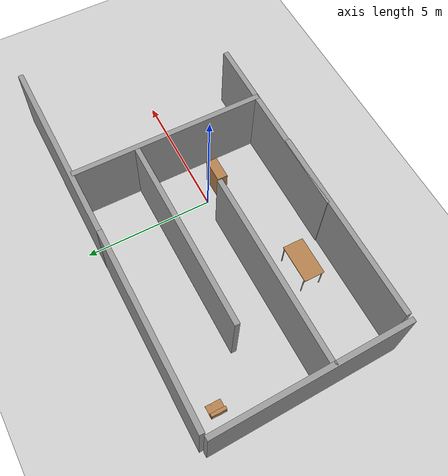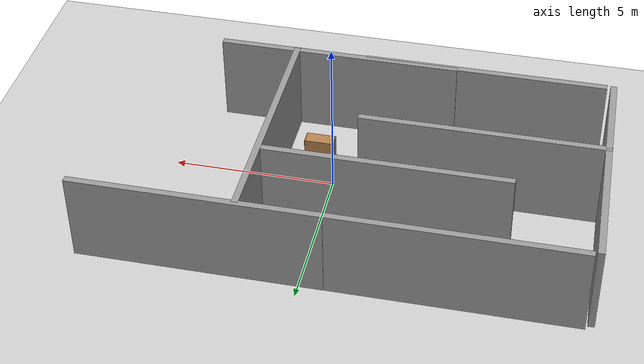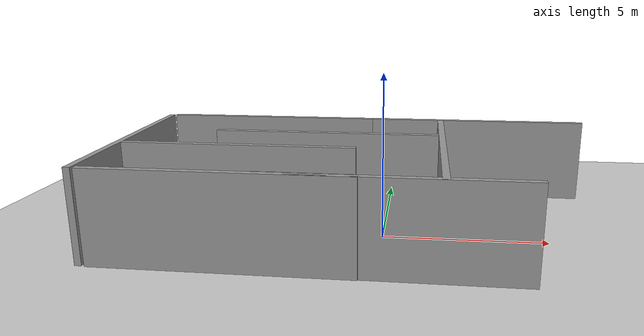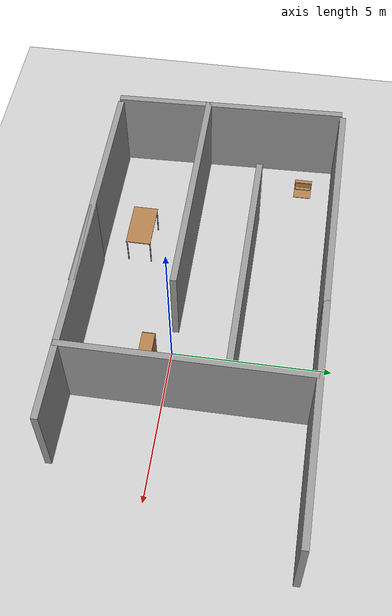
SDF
<sdf version="1.6">
 <world name="default">
  <light name="sun" type="directional">
   <pose>0 0 10 0 -0 0</pose>
   <diffuse>0.8 0.8 0.8 1</diffuse>
   <specular>0.2 0.2 0.2 1</specular>
   <attenuation>
    <range>1000</range>
    <constant>0.9</constant>
    <linear>0.01</linear>
    <quadratic>0.001</quadratic>
   </attenuation>
   <direction>-0.5 0.1 -0.9</direction>
  </light>
  <model name="ground_plane">
   <static>1</static>
   <link name="link">
    <collision name="collision">
     <geometry><plane><normal>0 0 1</normal><size>100 100</size></plane></geometry>
     <surface><friction><ode><mu>100</mu><mu2>50</mu2></ode></friction></surface>
    </collision>
    <visual name="visual">
     <cast_shadows>0</cast_shadows>
     <geometry><plane><normal>0 0 1</normal><size>100 100</size></plane></geometry>
     <material>
      <script><uri>file://media/materials/scripts/gazebo.material</uri><name>Gazebo/Grey</name></script>
     </material>
    </visual>
    <velocity_decay><linear>0</linear><angular>0</angular></velocity_decay>
   </link>
  </model>
  <physics name="default_physics" default="0" type="ode">
   <max_step_size>0.001</max_step_size>
   <real_time_factor>1</real_time_factor>
   <real_time_update_rate>1000</real_time_update_rate>
  </physics>
  <scene><ambient>0.4 0.4 0.4 1</ambient><background>0.7 0.7 0.7 1</background><shadows>1</shadows></scene>
  <spherical_coordinates>
   <surface_model>EARTH_WGS84</surface_model>
   <latitude_deg>0</latitude_deg>
   <longitude_deg>0</longitude_deg>
   <elevation>0</elevation>
   <heading_deg>0</heading_deg>
  </spherical_coordinates>
  <model name="grey_wall">
   <static>1</static>
   <link name="link">
    <pose>0 0 1.4 0 -0 0</pose>
    <collision name="collision"><geometry><box><size>7.5 0.2 2.8</size></box></geometry></collision>
    <visual name="visual">
     <cast_shadows>0</cast_shadows>
     <geometry><box><size>7.5 0.2 2.8</size></box></geometry>
     <material>
      <script>
       <uri>model://grey_wall/materials/scripts</uri>
       <uri>model://grey_wall/materials/textures</uri>
       <name>vrc/grey_wall</name>
      </script>
     </material>
    </visual>
    <velocity_decay><linear>0</linear><angular>0</angular></velocity_decay>
   </link>
   <pose>-4.45669 4.51369 0 0 -0 0</pose>
  </model>
  <model name="grey_wall_0">
   <static>1</static>
   <link name="link">
    <pose>0 0 1.4 0 -0 0</pose>
    <collision name="collision"><geometry><box><size>7.5 0.2 2.8</size></box></geometry></collision>
    <visual name="visual">
     <cast_shadows>0</cast_shadows>
     <geometry><box><size>7.5 0.2 2.8</size></box></geometry>
     <material>
      <script>
       <uri>model://grey_wall/materials/scripts</uri>
       <uri>model://grey_wall/materials/textures</uri>
       <name>vrc/grey_wall</name>
      </script>
     </material>
    </visual>
    <velocity_decay><linear>0</linear><angular>0</angular></velocity_decay>
   </link>
   <pose>-4.17438 -2.94975 0 0 -0 0</pose>
  </model>
  <model name="grey_wall_1">
   <static>1</static>
   <link name="link">
    <pose>0 0 1.4 0 -0 0</pose>
    <collision name="collision"><geometry><box><size>7.5 0.2 2.8</size></box></geometry></collision>
    <visual name="visual">
     <cast_shadows>0</cast_shadows>
     <geometry><box><size>7.5 0.2 2.8</size></box></geometry>
     <material>
      <script>
       <uri>model://grey_wall/materials/scripts</uri>
       <uri>model://grey_wall/materials/textures</uri>
       <name>vrc/grey_wall</name>
      </script>
     </material>
    </visual>
    <velocity_decay><linear>0</linear><angular>0</angular></velocity_decay>
   </link>
   <pose>-8.24091 0.730795 0 0 0 -1.53854</pose>
  </model>
  <model name="grey_wall_2">
   <static>1</static>
   <link name="link">
    <pose>0 0 1.4 0 -0 0</pose>
    <collision name="collision"><geometry><box><size>7.5 0.2 2.8</size></box></geometry></collision>
    <visual name="visual">
     <cast_shadows>0</cast_shadows>
     <geometry><box><size>7.5 0.2 2.8</size></box></geometry>
     <material>
      <script>
       <uri>model://grey_wall/materials/scripts</uri>
       <uri>model://grey_wall/materials/textures</uri>
       <name>vrc/grey_wall</name>
      </script>
     </material>
    </visual>
    <velocity_decay><linear>0</linear><angular>0</angular></velocity_decay>
   </link>
   <pose>-4.55904 0 0 0 -0 0</pose>
  </model>
  <model name="grey_wall_3">
   <static>1</static>
   <link name="link">
    <pose>0 0 1.4 0 -0 0</pose>
    <collision name="collision"><geometry><box><size>7.5 0.2 2.8</size></box></geometry></collision>
    <visual name="visual">
     <cast_shadows>0</cast_shadows>
     <geometry><box><size>7.5 0.2 2.8</size></box></geometry>
     <material>
      <script>
       <uri>model://grey_wall/materials/scripts</uri>
       <uri>model://grey_wall/materials/textures</uri>
       <name>vrc/grey_wall</name>
      </script>
     </material>
    </visual>
    <velocity_decay><linear>0</linear><angular>0</angular></velocity_decay>
   </link>
   <pose>1.76758 0.74778 0.00212 0 0 -1.57102</pose>
  </model>
  <model name="grey_wall_4">
   <static>1</static>
   <link name="link">
    <pose>0 0 1.4 0 -0 0</pose>
    <collision name="collision"><geometry><box><size>7.5 0.2 2.8</size></box></geometry></collision>
    <visual name="visual">
     <cast_shadows>0</cast_shadows>
     <geometry><box><size>7.5 0.2 2.8</size></box></geometry>
     <material>
      <script>
       <uri>model://grey_wall/materials/scripts</uri>
       <uri>model://grey_wall/materials/textures</uri>
       <name>vrc/grey_wall</name>
      </script>
     </material>
    </visual>
    <velocity_decay><linear>0</linear><angular>0</angular></velocity_decay>
   </link>
   <pose>0.431481 -2.92293 0 0 -0 0</pose>
  </model>
  <model name="grey_wall_5">
   <static>1</static>
   <link name="link">
    <pose>0 0 1.4 0 -0 0</pose>
    <collision name="collision"><geometry><box><size>7.5 0.2 2.8</size></box></geometry></collision>
    <visual name="visual">
     <cast_shadows>0</cast_shadows>
     <geometry><box><size>7.5 0.2 2.8</size></box></geometry>
     <material>
      <script>
       <uri>model://grey_wall/materials/scripts</uri>
       <uri>model://grey_wall/materials/textures</uri>
       <name>vrc/grey_wall</name>
      </script>
     </material>
    </visual>
    <velocity_decay><linear>0</linear><angular>0</angular></velocity_decay>
   </link>
   <pose>-2 2 0 0 -0 0</pose>
  </model>
  <model name="grey_wall_6">
   <static>1</static>
   <link name="link">
    <pose>0 0 1.4 0 -0 0</pose>
    <collision name="collision"><geometry><box><size>7.5 0.2 2.8</size></box></geometry></collision>
    <visual name="visual">
     <cast_shadows>0</cast_shadows>
     <geometry><box><size>7.5 0.2 2.8</size></box></geometry>
     <material>
      <script>
       <uri>model://grey_wall/materials/scripts</uri>
       <uri>model://grey_wall/materials/textures</uri>
       <name>vrc/grey_wall</name>
      </script>
     </material>
    </visual>
    <velocity_decay><linear>0</linear><angular>0</angular></velocity_decay>
   </link>
   <pose>3 4.52028 0 0 -0 0</pose>
  </model>
  <gravity>0 0 -9.8</gravity>
  <magnetic_field>6e-06 2.3e-05 -4.2e-05</magnetic_field>
  <atmosphere type="adiabatic"/>
  <model name="bookshelf">
   <static>1</static>
   <link name="link">
    <inertial><mass>1</mass></inertial>
    <collision name="back">
     <pose>0 0.005 0.6 0 -0 0</pose>
     <geometry><box><size>0.9 0.01 1.2</size></box></geometry>
    </collision>
    <visual name="visual1">
     <pose>0 0.005 0.6 0 -0 0</pose>
     <geometry><box><size>0.9 0.01 1.2</size></box></geometry>
     <material>
      <script><uri>file://media/materials/scripts/gazebo.material</uri><name>Gazebo/Wood</name></script>
     </material>
    </visual>
    <collision name="left_side">
     <pose>0.45 -0.195 0.6 0 -0 0</pose>
     <geometry><box><size>0.02 0.4 1.2</size></box></geometry>
    </collision>
    <visual name="visual2">
     <pose>0.45 -0.195 0.6 0 -0 0</pose>
     <geometry><box><size>0.02 0.4 1.2</size></box></geometry>
     <material>
      <script><uri>file://media/materials/scripts/gazebo.material</uri><name>Gazebo/Wood</name></script>
     </material>
    </visual>
    <collision name="right_side">
     <pose>-0.45 -0.195 0.6 0 -0 0</pose>
     <geometry><box><size>0.02 0.4 1.2</size></box></geometry>
    </collision>
    <visual name="visual3">
     <pose>-0.45 -0.195 0.6 0 -0 0</pose>
     <geometry><box><size>0.02 0.4 1.2</size></box></geometry>
     <material>
      <script><uri>file://media/materials/scripts/gazebo.material</uri><name>Gazebo/Wood</name></script>
     </material>
    </visual>
    <collision name="bottom">
     <pose>0 -0.195 0.03 0 -0 0</pose>
     <geometry><box><size>0.88 0.4 0.06</size></box></geometry>
    </collision>
    <visual name="visual4">
     <pose>0 -0.195 0.03 0 -0 0</pose>
     <geometry><box><size>0.88 0.4 0.06</size></box></geometry>
     <material>
      <script><uri>file://media/materials/scripts/gazebo.material</uri><name>Gazebo/Wood</name></script>
     </material>
    </visual>
    <collision name="top">
     <pose>0 -0.195 1.19 0 -0 0</pose>
     <geometry><box><size>0.88 0.4 0.02</size></box></geometry>
    </collision>
    <visual name="visual5">
     <pose>0 -0.195 1.19 0 -0 0</pose>
     <geometry><box><size>0.88 0.4 0.02</size></box></geometry>
     <material>
      <script><uri>file://media/materials/scripts/gazebo.material</uri><name>Gazebo/Wood</name></script>
     </material>
    </visual>
    <collision name="low_shelf">
     <pose>0 -0.195 0.43 0 -0 0</pose>
     <geometry><box><size>0.88 0.4 0.02</size></box></geometry>
    </collision>
    <visual name="visual6">
     <pose>0 -0.195 0.43 0 -0 0</pose>
     <geometry><box><size>0.88 0.4 0.02</size></box></geometry>
     <material>
      <script><uri>file://media/materials/scripts/gazebo.material</uri><name>Gazebo/Wood</name></script>
     </material>
    </visual>
    <collision name="high_shelf">
     <pose>0 -0.195 0.8 0 -0 0</pose>
     <geometry><box><size>0.88 0.4 0.02</size></box></geometry>
    </collision>
    <visual name="visual7">
     <pose>0 -0.195 0.8 0 -0 0</pose>
     <geometry><box><size>0.88 0.4 0.02</size></box></geometry>
     <material>
      <script><uri>file://media/materials/scripts/gazebo.material</uri><name>Gazebo/Wood</name></script>
     </material>
    </visual>
   </link>
   <pose>0.531761 -0.454269 0 0 -0 0</pose>
  </model>
  <model name="table">
   <static>1</static>
   <link name="link">
    <collision name="surface">
     <pose>0 0 1 0 -0 0</pose>
     <geometry><box><size>1.5 0.8 0.03</size></box></geometry>
     <surface><friction><ode><mu>0.6</mu><mu2>0.6</mu2></ode></friction></surface>
    </collision>
    <visual name="visual1">
     <pose>0 0 1 0 -0 0</pose>
     <geometry><box><size>1.5 0.8 0.03</size></box></geometry>
     <material>
      <script><uri>file://media/materials/scripts/gazebo.material</uri><name>Gazebo/Wood</name></script>
     </material>
    </visual>
    <collision name="front_left_leg">
     <pose>0.68 0.38 0.5 0 -0 0</pose>
     <geometry><cylinder><radius>0.02</radius><length>1</length></cylinder></geometry>
    </collision>
    <visual name="front_left_leg">
     <pose>0.68 0.38 0.5 0 -0 0</pose>
     <geometry><cylinder><radius>0.02</radius><length>1</length></cylinder></geometry>
     <material>
      <script><uri>file://media/materials/scripts/gazebo.material</uri><name>Gazebo/Grey</name></script>
     </material>
    </visual>
    <collision name="front_right_leg">
     <pose>0.68 -0.38 0.5 0 -0 0</pose>
     <geometry><cylinder><radius>0.02</radius><length>1</length></cylinder></geometry>
    </collision>
    <visual name="front_right_leg">
     <pose>0.68 -0.38 0.5 0 -0 0</pose>
     <geometry><cylinder><radius>0.02</radius><length>1</length></cylinder></geometry>
     <material>
      <script><uri>file://media/materials/scripts/gazebo.material</uri><name>Gazebo/Grey</name></script>
     </material>
    </visual>
    <collision name="back_right_leg">
     <pose>-0.68 -0.38 0.5 0 -0 0</pose>
     <geometry><cylinder><radius>0.02</radius><length>1</length></cylinder></geometry>
    </collision>
    <visual name="back_right_leg">
     <pose>-0.68 -0.38 0.5 0 -0 0</pose>
     <geometry><cylinder><radius>0.02</radius><length>1</length></cylinder></geometry>
     <material>
      <script><uri>file://media/materials/scripts/gazebo.material</uri><name>Gazebo/Grey</name></script>
     </material>
    </visual>
    <collision name="back_left_leg">
     <pose>-0.68 0.38 0.5 0 -0 0</pose>
     <geometry><cylinder><radius>0.02</radius><length>1</length></cylinder></geometry>
    </collision>
    <visual name="back_left_leg">
     <pose>-0.68 0.38 0.5 0 -0 0</pose>
     <geometry><cylinder><radius>0.02</radius><length>1</length></cylinder></geometry>
     <material>
      <script><uri>file://media/materials/scripts/gazebo.material</uri><name>Gazebo/Grey</name></script>
     </material>
    </visual>
   </link>
   <pose>-4.15948 -1.64901 0 0 -0 0</pose>
  </model>
  <model name="wooden_case">
   <link name="base">
    <pose>0 0 0.024 0 -0 0</pose>
    <inertial>
     <pose>-0.022184 0 0.171592 0 -0 0</pose>
     <mass>3.96264</mass>
     <inertia>
      <ixx>0.213536</ixx>
      <ixy>0</ixy>
      <ixz>0.000779377</ixz>
      <iyy>0.0708943</iyy>
      <iyz>0</iyz>
      <izz>0.154604</izz>
     </inertia>
    </inertial>
    <collision name="collision_back">
     <pose>-0.053975 0 0.1778 0 -0 0</pose>
     <geometry><box><size>0.01905 0.5461 0.3175</size></box></geometry>
     <surface>
      <contact>
       <poissons_ratio>0.347</poissons_ratio>
       <elastic_modulus>8.8e+09</elastic_modulus>
       <ode><kp>100000</kp><kd>100</kd><max_vel>100</max_vel><min_depth>0.001</min_depth></ode>
      </contact>
      <friction>
       <torsional>
        <coefficient>1</coefficient>
        <use_patch_radius>0</use_patch_radius>
        <surface_radius>0.01</surface_radius>
       </torsional>
      </friction>
     </surface>
    </collision>
    <visual name="visual_back">
     <pose>-0.053975 0 0.1778 0 -0 0</pose>
     <geometry><box><size>0.01905 0.5461 0.3175</size></box></geometry>
     <material>
      <script><uri>file://media/materials/scripts/gazebo.material</uri><name>Gazebo/Wood</name></script>
     </material>
    </visual>
    <collision name="collision_bottom">
     <pose>0 0 0.009525 0 -0 0</pose>
     <geometry><box><size>0.127 0.5842 0.01905</size></box></geometry>
     <surface>
      <contact>
       <poissons_ratio>0.347</poissons_ratio>
       <elastic_modulus>8.8e+09</elastic_modulus>
       <ode><kp>100000</kp><kd>100</kd><max_vel>100</max_vel><min_depth>0.001</min_depth></ode>
      </contact>
      <friction>
       <torsional>
        <coefficient>1</coefficient>
        <use_patch_radius>0</use_patch_radius>
        <surface_radius>0.01</surface_radius>
       </torsional>
      </friction>
     </surface>
    </collision>
    <visual name="visual_bottom">
     <pose>0 0 0.009525 0 -0 0</pose>
     <geometry><box><size>0.127 0.5842 0.01905</size></box></geometry>
     <material>
      <script><uri>file://media/materials/scripts/gazebo.material</uri><name>Gazebo/Wood</name></script>
     </material>
    </visual>
    <collision name="collision_top">
     <pose>0 0 0.346075 0 -0 0</pose>
     <geometry><box><size>0.127 0.5842 0.01905</size></box></geometry>
     <surface>
      <contact>
       <poissons_ratio>0.347</poissons_ratio>
       <elastic_modulus>8.8e+09</elastic_modulus>
       <ode><kp>100000</kp><kd>100</kd><max_vel>100</max_vel><min_depth>0.001</min_depth></ode>
      </contact>
      <friction>
       <torsional>
        <coefficient>1</coefficient>
        <use_patch_radius>0</use_patch_radius>
        <surface_radius>0.01</surface_radius>
       </torsional>
      </friction>
     </surface>
    </collision>
    <visual name="visual_top">
     <pose>0 0 0.346075 0 -0 0</pose>
     <geometry><box><size>0.127 0.5842 0.01905</size></box></geometry>
     <material>
      <script><uri>file://media/materials/scripts/gazebo.material</uri><name>Gazebo/Wood</name></script>
     </material>
    </visual>
    <collision name="collision_left">
     <pose>0 -0.282575 0.1778 0 -0 0</pose>
     <geometry><box><size>0.127 0.01905 0.3175</size></box></geometry>
     <surface>
      <contact>
       <poissons_ratio>0.347</poissons_ratio>
       <elastic_modulus>8.8e+09</elastic_modulus>
       <ode><kp>100000</kp><kd>100</kd><max_vel>100</max_vel><min_depth>0.001</min_depth></ode>
      </contact>
      <friction>
       <torsional>
        <coefficient>1</coefficient>
        <use_patch_radius>0</use_patch_radius>
        <surface_radius>0.01</surface_radius>
       </torsional>
      </friction>
     </surface>
    </collision>
    <visual name="visual_left">
     <pose>0 -0.282575 0.1778 0 -0 0</pose>
     <geometry><box><size>0.127 0.01905 0.3175</size></box></geometry>
     <material>
      <script><uri>file://media/materials/scripts/gazebo.material</uri><name>Gazebo/Wood</name></script>
     </material>
    </visual>
    <collision name="collision_right">
     <pose>0 0.282575 0.1778 0 -0 0</pose>
     <geometry><box><size>0.127 0.01905 0.3175</size></box></geometry>
     <surface>
      <contact>
       <poissons_ratio>0.347</poissons_ratio>
       <elastic_modulus>8.8e+09</elastic_modulus>
       <ode><kp>100000</kp><kd>100</kd><max_vel>100</max_vel><min_depth>0.001</min_depth></ode>
      </contact>
      <friction>
       <torsional>
        <coefficient>1</coefficient>
        <use_patch_radius>0</use_patch_radius>
        <surface_radius>0.01</surface_radius>
       </torsional>
      </friction>
     </surface>
    </collision>
    <visual name="visual_right">
     <pose>0 0.282575 0.1778 0 -0 0</pose>
     <geometry><box><size>0.127 0.01905 0.3175</size></box></geometry>
     <material>
      <script><uri>file://media/materials/scripts/gazebo.material</uri><name>Gazebo/Wood</name></script>
     </material>
    </visual>
    <collision name="collision_block_left">
     <pose>0.0095 -0.2151 -0.012 0 -0 0</pose>
     <geometry><box><size>0.108 0.05 0.024</size></box></geometry>
     <surface>
      <contact>
       <poissons_ratio>0.347</poissons_ratio>
       <elastic_modulus>8.8e+09</elastic_modulus>
       <ode><kp>100000</kp><kd>100</kd><max_vel>100</max_vel><min_depth>0.001</min_depth></ode>
      </contact>
      <friction>
       <torsional>
        <coefficient>1</coefficient>
        <use_patch_radius>0</use_patch_radius>
        <surface_radius>0.01</surface_radius>
       </torsional>
      </friction>
     </surface>
    </collision>
    <visual name="visual_block_left">
     <pose>0.0095 -0.2151 -0.012 0 -0 0</pose>
     <geometry><box><size>0.108 0.05 0.024</size></box></geometry>
     <material>
      <script><uri>file://media/materials/scripts/gazebo.material</uri><name>Gazebo/Wood</name></script>
     </material>
    </visual>
    <collision name="collision_block_right">
     <pose>0.0095 0.2151 -0.012 0 -0 0</pose>
     <geometry><box><size>0.108 0.05 0.024</size></box></geometry>
     <surface>
      <contact>
       <poissons_ratio>0.347</poissons_ratio>
       <elastic_modulus>8.8e+09</elastic_modulus>
       <ode><kp>100000</kp><kd>100</kd><max_vel>100</max_vel><min_depth>0.001</min_depth></ode>
      </contact>
      <friction>
       <torsional>
        <coefficient>1</coefficient>
        <use_patch_radius>0</use_patch_radius>
        <surface_radius>0.01</surface_radius>
       </torsional>
      </friction>
     </surface>
    </collision>
    <visual name="visual_block_right">
     <pose>0.0095 0.2151 -0.012 0 -0 0</pose>
     <geometry><box><size>0.108 0.05 0.024</size></box></geometry>
     <material>
      <script><uri>file://media/materials/scripts/gazebo.material</uri><name>Gazebo/Wood</name></script>
     </material>
    </visual>
   </link>
   <link name="lid">
    <pose>0.243775 0 0.009525 0 -0 0</pose>
    <inertial>
     <mass>1.97874</mass>
     <inertia>
      <ixx>0.0563367</ixx>
      <ixy>0</ixy>
      <ixz>0</ixz>
      <iyy>0.020911</iyy>
      <iyz>0</iyz>
      <izz>0.0771281</izz>
     </inertia>
    </inertial>
    <collision name="collision">
     <geometry><box><size>0.3556 0.5842 0.01905</size></box></geometry>
     <surface>
      <contact>
       <poissons_ratio>0.347</poissons_ratio>
       <elastic_modulus>8.8e+09</elastic_modulus>
       <ode><kp>100000</kp><kd>100</kd><max_vel>100</max_vel><min_depth>0.001</min_depth></ode>
      </contact>
      <friction>
       <torsional>
        <coefficient>1</coefficient>
        <use_patch_radius>0</use_patch_radius>
        <surface_radius>0.01</surface_radius>
       </torsional>
      </friction>
     </surface>
    </collision>
    <visual name="visual">
     <geometry><box><size>0.3556 0.5842 0.01905</size></box></geometry>
     <material>
      <script><uri>file://media/materials/scripts/gazebo.material</uri><name>Gazebo/Wood</name></script>
     </material>
    </visual>
    <visual name="tee_nut_1">
     <pose>0.122 -0.216 0 0 -0 0</pose>
     <geometry><cylinder><radius>0.00635</radius><length>0.0192405</length></cylinder></geometry>
     <material>
      <script><uri>file://media/materials/scripts/gazebo.material</uri><name>Gazebo/Grey</name></script>
     </material>
    </visual>
    <visual name="tee_nut_2">
     <pose>0.122 -0.088 0 0 -0 0</pose>
     <geometry><cylinder><radius>0.00635</radius><length>0.0192405</length></cylinder></geometry>
     <material>
      <script><uri>file://media/materials/scripts/gazebo.material</uri><name>Gazebo/Grey</name></script>
     </material>
    </visual>
    <visual name="tee_nut_3">
     <pose>0.122 0.088 0 0 -0 0</pose>
     <geometry><cylinder><radius>0.00635</radius><length>0.0192405</length></cylinder></geometry>
     <material>
      <script><uri>file://media/materials/scripts/gazebo.material</uri><name>Gazebo/Grey</name></script>
     </material>
    </visual>
    <visual name="tee_nut_4">
     <pose>0.122 0.216 0 0 -0 0</pose>
     <geometry><cylinder><radius>0.00635</radius><length>0.0192405</length></cylinder></geometry>
     <material>
      <script><uri>file://media/materials/scripts/gazebo.material</uri><name>Gazebo/Grey</name></script>
     </material>
    </visual>
   </link>
   <joint name="lid_hinge" type="revolute">
    <pose>-0.1778 0 0.01905 0 -0 0</pose>
    <parent>base</parent>
    <child>lid</child>
    <axis>
     <xyz>0 1 0</xyz>
     <limit><upper>0.523599</upper><lower>-1.5708</lower></limit>
     <use_parent_model_frame>0</use_parent_model_frame>
     <dynamics><spring_reference>0</spring_reference><spring_stiffness>0</spring_stiffness></dynamics>
    </axis>
   </joint>
   <pose>-7.38739 3.47207 -0.001057 0 -0.000429 0</pose>
  </model>
 </world>
</sdf>
